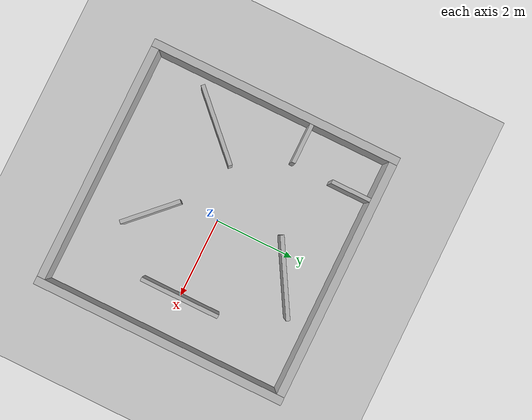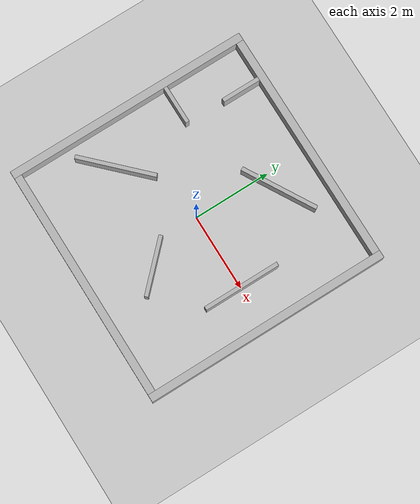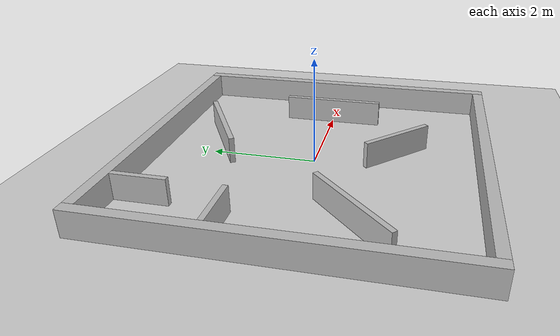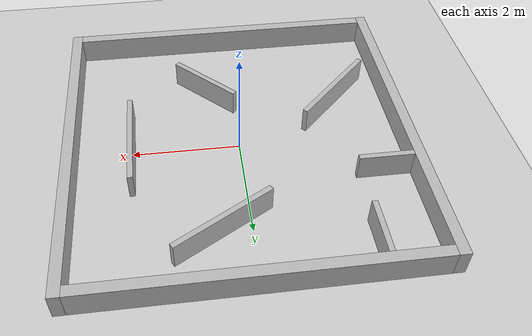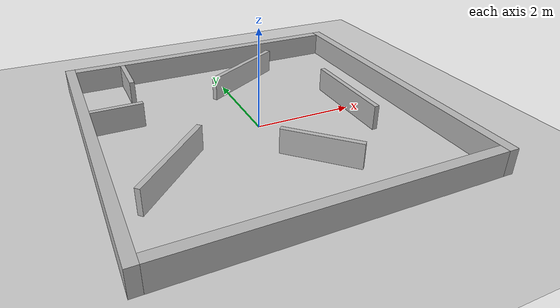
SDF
<sdf version="1.6">
 <world name="pioneer3_world">
  <physics name="1ms" type="ignored">
   <max_step_size>0.004</max_step_size>
   <real_time_factor>1.0</real_time_factor>
  </physics>
  <plugin filename="gz-sim-physics-system" name="gz::sim::systems::Physics"/>
  <plugin filename="gz-sim-user-commands-system" name="gz::sim::systems::UserCommands"/>
  <plugin filename="gz-sim-scene-broadcaster-system" name="gz::sim::systems::SceneBroadcaster"/>
  <plugin filename="gz-sim-contact-system" name="gz::sim::systems::Contact"/>
  <light type="directional" name="sun">
   <cast_shadows>false</cast_shadows>
   <pose>0 0 10 0 0 0</pose>
   <diffuse>0.8 0.8 0.8 1</diffuse>
   <specular>0.2 0.2 0.2 1</specular>
   <attenuation>
    <range>1000</range>
    <constant>0.9</constant>
    <linear>0.01</linear>
    <quadratic>0.001</quadratic>
   </attenuation>
   <direction>-0.5 0.1 -0.9</direction>
  </light>
  <model name="ground_plane">
   <static>true</static>
   <link name="link">
    <collision name="collision">
     <geometry><plane><normal>0 0 1</normal><size>100 100</size></plane></geometry>
    </collision>
    <visual name="visual">
     <geometry><plane><normal>0 0 1</normal><size>100 100</size></plane></geometry>
     <material>
      <ambient>0.8 0.8 0.8 1</ambient>
      <diffuse>0.8 0.8 0.8 1</diffuse>
      <specular>0.8 0.8 0.8 1</specular>
     </material>
    </visual>
   </link>
  </model>
  <model name="walls">
   <static>true</static>
   <link name="link">
    <material><ambient>0.8 0.8 0.8 1</ambient><diffuse>0.8 0.8 0.8 1</diffuse></material>
    <collision name="box1_col">
     <pose>3.1 0 0.25 0 0 0</pose>
     <geometry><box><size>0.2 6.4 0.5</size></box></geometry>
    </collision>
    <visual name="box1_vis">
     <pose>3.1 0 0.25 0 0 0</pose>
     <geometry><box><size>0.2 6.4 0.5</size></box></geometry>
    </visual>
    <collision name="box2_col">
     <pose>-3.1 0 0.25 0 0 0</pose>
     <geometry><box><size>0.2 6.4 0.5</size></box></geometry>
    </collision>
    <visual name="box2_vis">
     <pose>-3.1 0 0.25 0 0 0</pose>
     <geometry><box><size>0.2 6.4 0.5</size></box></geometry>
    </visual>
    <collision name="box3_col">
     <pose>0 3.1 0.25 0 0 0</pose>
     <geometry><box><size>6 0.2 0.5</size></box></geometry>
    </collision>
    <visual name="box3_vis">
     <pose>0 3.1 0.25 0 0 0</pose>
     <geometry><box><size>6 0.2 0.5</size></box></geometry>
    </visual>
    <collision name="box4_col">
     <pose>0 -3.1 0.25 0 0 0</pose>
     <geometry><box><size>6 0.2 0.5</size></box></geometry>
    </collision>
    <visual name="box4_vis">
     <pose>0 -3.1 0.25 0 0 0</pose>
     <geometry><box><size>6 0.2 0.5</size></box></geometry>
    </visual>
    <collision name="box5_col">
     <pose>2 0 0.25 0 0 1.5708</pose>
     <geometry><box><size>2 0.1 0.5</size></box></geometry>
    </collision>
    <visual name="box5_vis">
     <pose>2 0 0.25 0 0 1.5708</pose>
     <geometry><box><size>2 0.1 0.5</size></box></geometry>
    </visual>
    <collision name="box6_col">
     <pose>0.5 2 0.25 0 0 0.5236</pose>
     <geometry><box><size>2 0.1 0.5</size></box></geometry>
    </collision>
    <visual name="box6_vis">
     <pose>0.5 2 0.25 0 0 0.5236</pose>
     <geometry><box><size>2 0.1 0.5</size></box></geometry>
    </visual>
    <collision name="box7_col">
     <pose>0.5 -1.5 0.25 0 0 -0.7854</pose>
     <geometry><box><size>1.5 0.1 0.5</size></box></geometry>
    </collision>
    <visual name="box7_vis">
     <pose>0.5 -1.5 0.25 0 0 -0.7854</pose>
     <geometry><box><size>1.5 0.1 0.5</size></box></geometry>
    </visual>
    <collision name="box8_col">
     <pose>-2 2.5 0.25 0 0 1.5708</pose>
     <geometry><box><size>1 0.1 0.5</size></box></geometry>
    </collision>
    <visual name="box8_vis">
     <pose>-2 2.5 0.25 0 0 1.5708</pose>
     <geometry><box><size>1 0.1 0.5 0.5</size></box></geometry>
    </visual>
    <collision name="box9_col">
     <pose>-2.5 1 0.25 0 0 0</pose>
     <geometry><box><size>1 0.1 0.5</size></box></geometry>
    </collision>
    <visual name="box9_vis">
     <pose>-2.5 1 0.25 0 0 0</pose>
     <geometry><box><size>1 0.1 0.5</size></box></geometry>
    </visual>
    <collision name="box10_col">
     <pose>-2 -1 0.25 0 0 0.7854</pose>
     <geometry><box><size>2 0.1 0.5</size></box></geometry>
    </collision>
    <visual name="box10_vis">
     <pose>-2 -1 0.25 0 0 0.7854</pose>
     <geometry><box><size>2 0.1 0.5</size></box></geometry>
    </visual>
   </link>
  </model>
 </world>
</sdf>
